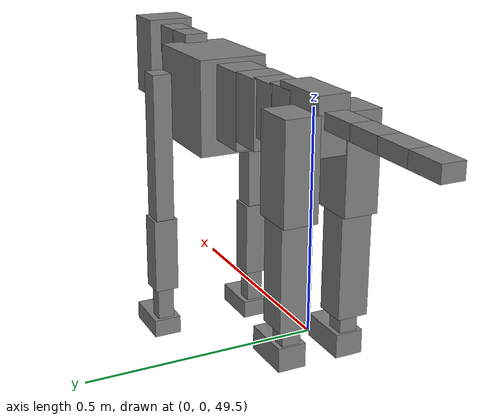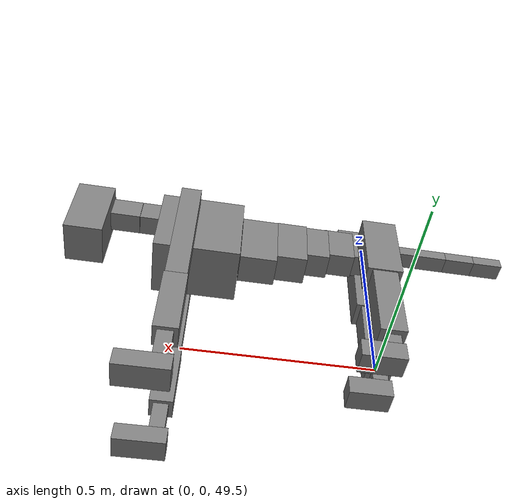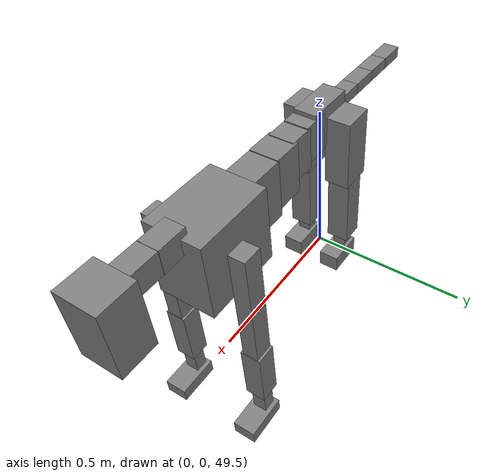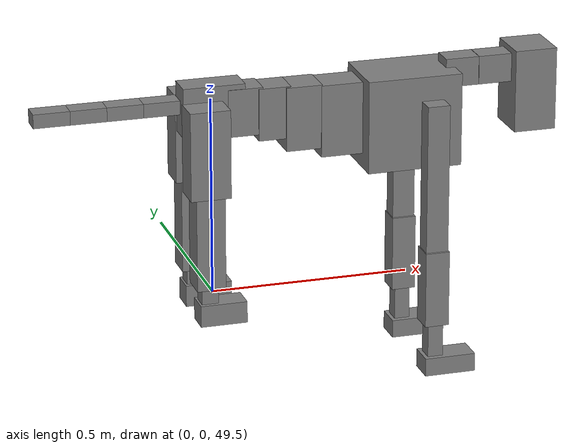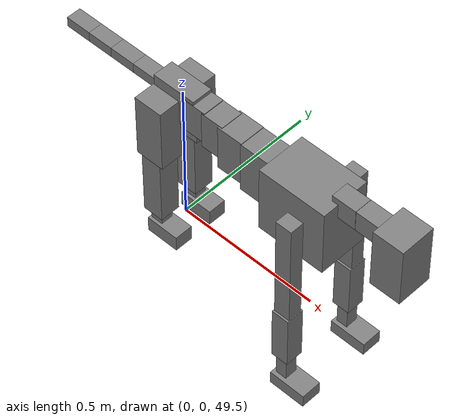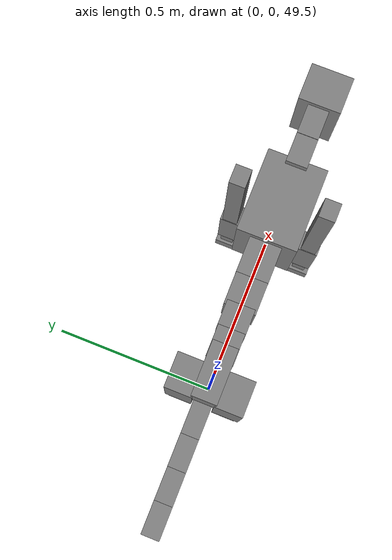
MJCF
<mujoco model="dog">

    <default>
        <joint armature="0.02" stiffness="1" damping="0.2" limited="true"/>
        <geom condim="3" friction="1 0.05 0.05" margin="0.01"/>
        <motor ctrllimited="true" ctrlrange="-1.0 1.0" forcelimited="true" gear="50"/>
    </default>

    <compiler inertiafromgeom="true" angle="radian"/>

    <option timestep="0.016" iterations="50" tolerance="1e-10" solver="Newton" jacobian="dense" cone="pyramidal"/>

    <size nconmax="20000" njmax="60000" nstack="5000000"/>
    <visual>
        <map force="0.1" zfar="30"/>
        <rgba haze="0.15 0.25 0.35 1"/>
        <quality shadowsize="2048"/>
        <global offwidth="800" offheight="800"/>
    </visual>

    <asset>
        <texture type="skybox" builtin="gradient" rgb1="0.3 0.5 0.7" rgb2="0 0 0" width="512" height="512"/>
        <texture name="texplane" type="2d" builtin="checker" rgb1=".2 .3 .4" rgb2=".1 0.15 0.2" width="512" height="512"
                 mark="cross" markrgb=".8 .8 .8"/>
        <texture name="texgeom" type="cube" builtin="flat" mark="cross" width="127" height="1278" rgb1="0.8 0.6 0.4"
                 rgb2="0.8 0.6 0.4" markrgb="1 1 1" random="0.01"/>

        <material name="matplane" reflectance="0.3" texture="texplane" texrepeat="1 1" texuniform="true"/>
        <material name="matgeom" texture="texgeom" texuniform="true" rgba="0.8 0.6 .4 1"/>
    </asset>

    <worldbody>
        <geom name="floor" pos="0 0 0" size="0 0 .25" type="plane" material="matplane" condim="3"/>

        <light directional="false" diffuse=".2 .2 .2" specular="0 0 0" pos="0 0 5" dir="0 0 -1" castshadow="false"/>
        <light mode="targetbodycom" target="torso" directional="false" diffuse=".8 .8 .8" specular="0.3 0.3 0.3"
               pos="0 0 4.0" dir="0 0 -1"/>

        <body name="root" pos="0 0 50">
            <freejoint name="root_1"/>
            <geom type="box" pos="0 0 -0.02" size="0.0774  0.0358  0.063" density="2030"/>

            <body name="spine1" pos="0.054 0 0">
                <joint name="spine1_y" axis="0 1 0" range="0 0.7" limited="true"/>
                <geom type="box" pos="0.02375 0 -0.03" size="0.04375  0.0375  0.05985" density="2030"/>

                <body name="spine2" pos="0.0612 0 0">
                    <joint name="spine2_y" axis="0 1 0" range="-0.15 0.15" limited="true"/>
                    <geom type="box" pos="0.03555  0  -0.04" size="0.04055  0.039  0.06615" density="2030"/>

                    <body name="spine3" pos="0.0730 0 0">
                        <joint name="spine3_y" axis="0 1 0" range="-0.15 0.15" limited="true"/>
                        <geom type="box" pos="0.03555  0  -0.057" size="0.04555  0.0445  0.081" density="2030"/>

                        <body name="spine4" pos="0.0780 0 0">
                            <joint name="spine4_y" axis="0 1 0" range="-0.15 0.15" limited="true"/>
                            <geom type="box" pos="0.05265  0  -0.07" size="0.05265  0.045  0.09135" density="2030"/>

                            <body name="torso" pos="0.1082 0 0">
                                <joint name="torso_y" axis="0 1 0" range="-0.15 0.15" limited="true"/>
                                <geom type="box" pos="0.11925  0  -0.085" size="0.11925  0.085  0.11745"
                                      density="2030"/>

                                <body name="neck1" pos="0.2160  0   0.0180">
                                    <joint name="neck1_y" axis="0 1 0" range="-1.2  -1" limited="true"/>
                                    <geom type="box" pos="0.0423  0  0" size="0.0423  0.03  0.036" density="2325"/>

                                    <body name="neck2" pos="0.0853  0  0">
                                        <joint name="neck2_y" axis="0 1 0" range="0.1  0" limited="true"/>
                                        <geom type="box" pos="0.0423  0  0" size="0.0423  0.03  0.036" density="2325"/>

                                        <body name="head" pos="0.0853  0  0">
                                            <joint name="head_y" axis="0 1 0" range="-0.3  -0.2" limited="true"/>
                                            <geom type="box" pos="0.0531  0  -0.055" size="0.0531  0.06  0.1044"
                                                  density="4030"/>

                                        </body>
                                    </body>
                                </body>

                                <body name="front_shoulder" pos="0.156  0   -0.0480">
                                    <joint name="front_shoulder_y" axis="0 1 0" range="-1 1.5" limited="true"/>
                                    <geom type="box" pos="0 0.13 -0.1754" size="0.0281  0.0240  0.2020" density="1158"/>
                                    <geom type="box" pos="0 -0.13 -0.1754" size="0.0281  0.0240  0.2020"
                                          density="1158"/>

                                    <body name="front_elbow" pos="0  0  -0.3507">
                                        <joint name="front_elbow_y" axis="0 1 0" range="-2 0" limited="true"/>
                                        <geom type="box" pos="0 0.13 -0.0966" size="0.0302  0.0308  0.0966"
                                              density="1081"/>
                                        <geom type="box" pos="0 -0.13 -0.0966" size="0.0302  0.0308  0.0966"
                                              density="1081"/>

                                        <body name="front_wrist" pos="0  0  -0.1932">
                                            <joint name="front_wrist_y" axis="0 1 0" range="-0.2 0" limited="true"/>
                                            <geom type="box" pos="0 0.13 -0.0494" size="0.0193  0.0214  0.0626"
                                                  density="1664"/>
                                            <geom type="box" pos="0 -0.13 -0.0494" size="0.0193  0.0214  0.0626"
                                                  density="1664"/>

                                            <body name="front_finger_end" pos="0  0  -0.0989">
                                                <joint name="front_finger_y" axis="0 1 0" range="-0.4 1"
                                                       limited="true"/>
                                                <geom type="box" pos="0.0352  0.13  -0.0080"
                                                      size="0.0644  0.0352  0.0230" density="1515"/>
                                                <geom type="box" pos="0.0352  -0.13  -0.0080"
                                                      size="0.0644  0.0352  0.0230" density="1515"/>

                                            </body>

                                        </body>
                                    </body>
                                </body>

                            </body>
                        </body>
                    </body>
                </body>
            </body>

            <body name="back_hip" pos="-0.03 0 -0.018">
                <joint name="back_hip_y" axis="0 1 0" range="-1.5 0.3" limited="true"/>
                <geom type="box" pos="0 0.07 -0.0889" size="0.0501  0.0393  0.1117" density="1154"/>
                <geom type="box" pos="0 -0.07 -0.0889" size="0.0501  0.0393  0.1117" density="1154"/>

                <body name="back_knee" pos="0  0  -0.1778">
                    <joint name="back_knee_y" axis="0 1 0" range="0 2.8" limited="true"/>
                    <geom type="box" pos="0 0.07 -0.1211" size="0.0360  0.0355  0.1367" density="1227"/>
                    <geom type="box" pos="0 -0.07 -0.1211" size="0.0360  0.0355  0.1367" density="1227"/>

                    <body name="back_ankle" pos="0  0  -0.2422">
                        <joint name="back_ankle_y" axis="0 1 0" range="-2.2 0" limited="true"/>
                        <geom type="box" pos="0 0.07 -0.0355" size="0.0211  0.0211  0.0468" density="1284"/>
                        <geom type="box" pos="0 -0.07 -0.0355" size="0.0211  0.0211  0.0468" density="1284"/>

                        <body name="back_toe_end" pos="0  0  -0.0710">
                            <joint name="back_toe_y" axis="0 1 0" range="-0.4 1" limited="true"/>
                            <geom type="box" pos="0.0319  0.07  -0.0123" size="0.0584  0.0319  0.0273" density="1515"/>
                            <geom type="box" pos="0.0319  -0.07  -0.0123" size="0.0584  0.0319  0.0273" density="1515"/>

                        </body>
                    </body>
                </body>
            </body>

            <body name="tail1" pos="-0.074 0 -0.006">
                <joint name="tail1_y" axis="0 1 0" range="-0.2 0.2" limited="true"/>
                <geom type="box" pos="-0.0536  0  0" size="0.045  0.025  0.0175" density="1587"/>

                <body name="tail2" pos="-0.09 0 0">
                    <joint name="tail2_y" axis="0 1 0" range="-0.2 0.2" limited="true"/>
                    <geom type="box" pos="-0.0536  0  0" size="0.045  0.025  0.0175" density="1587"/>

                    <body name="tail3" pos="-0.09 0 0">
                        <joint name="tail3_y" axis="0 1 0" range="-0.2 0.2" limited="true"/>
                        <geom type="box" pos="-0.0536  0  0" size="0.045  0.025  0.0175" density="1587"/>

                        <body name="tail4" pos="-0.09 0 0">
                            <joint name="tail4_y" axis="0 1 0" range="-0.2 0.2" limited="true"/>
                            <geom type="box" pos="-0.0536  0  0" size="0.045  0.025  0.0175" density="1587"/>

                        </body>
                    </body>
                </body>
            </body>
        </body>
    </worldbody>

    <actuator>
        <motor joint="spine1_y" forcerange="-150 150     "/>
        <motor joint="spine2_y" forcerange="-150 150     "/>
        <motor joint="spine3_y" forcerange="-150 150     "/>
        <motor joint="spine4_y" forcerange="-150 150     "/>
        <motor joint="torso_y" forcerange="-150 150     "/>
        <motor joint="neck1_y" forcerange="-100 100       "/>
        <motor joint="neck2_y" forcerange="-100 100       "/>
        <motor joint="head_y" forcerange="-150 150       "/>
        <motor joint="front_shoulder_y" forcerange="-142.36 117.58"/>
        <motor joint="front_elbow_y" forcerange="-139.31 185.01"/>
        <motor joint="front_wrist_y" forcerange="-105.33 66.15"/>
        <motor joint="front_finger_y" forcerange="-96.05 51.43"/>
        <motor joint="back_hip_y" forcerange="-395.55 328.45"/>
        <motor joint="back_knee_y" forcerange="-358.16 357.93"/>
        <motor joint="back_angle_y" forcerange="-155.97 81.85"/>
        <motor joint="back_toe_y" forcerange="-82.84 92.16"/>
        <motor joint="tail1_y" forcerange="-50 50     "/>
        <motor joint="tail2_y" forcerange="-50 50     "/>
        <motor joint="tail3_y" forcerange="-50 50     "/>
        <motor joint="tail4_y" forcerange="-50 50     "/>
    </actuator>
</mujoco>
